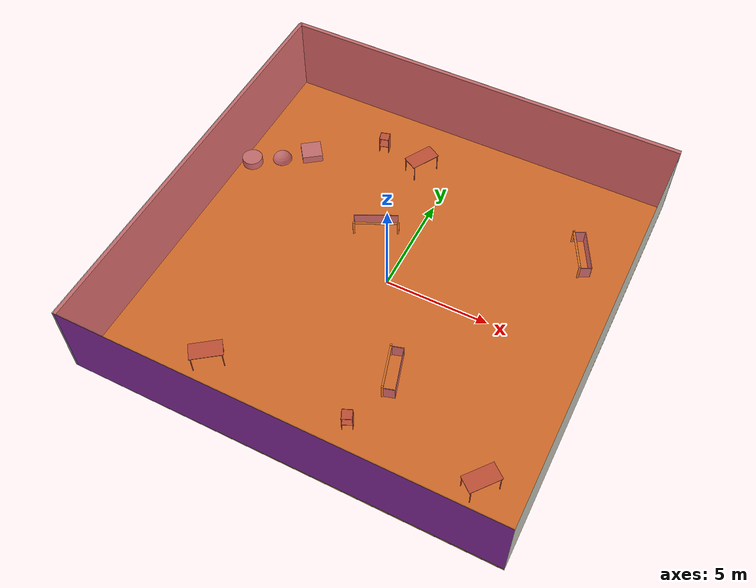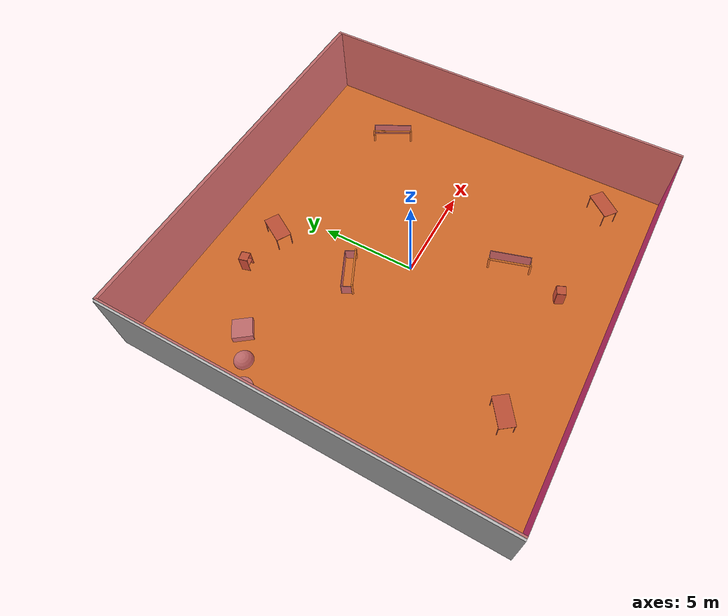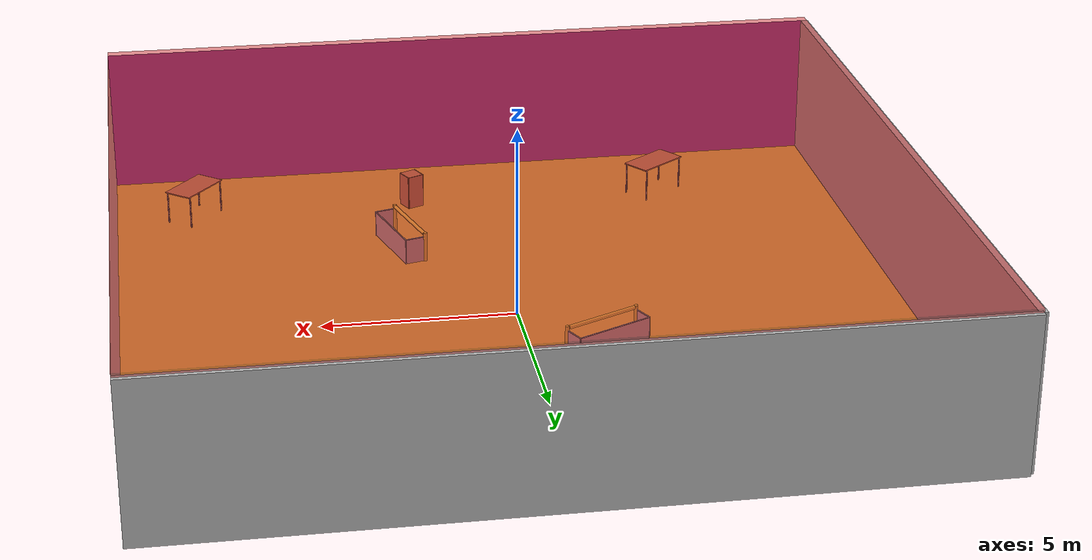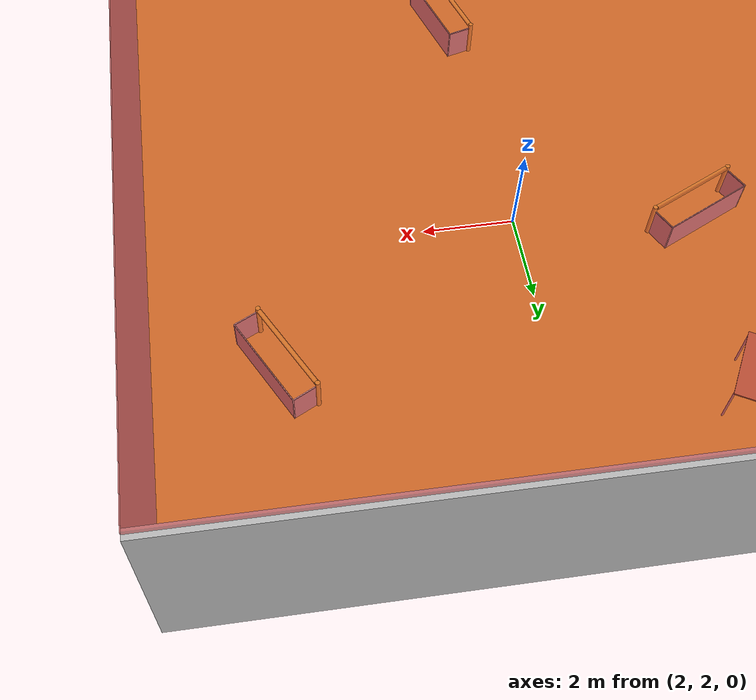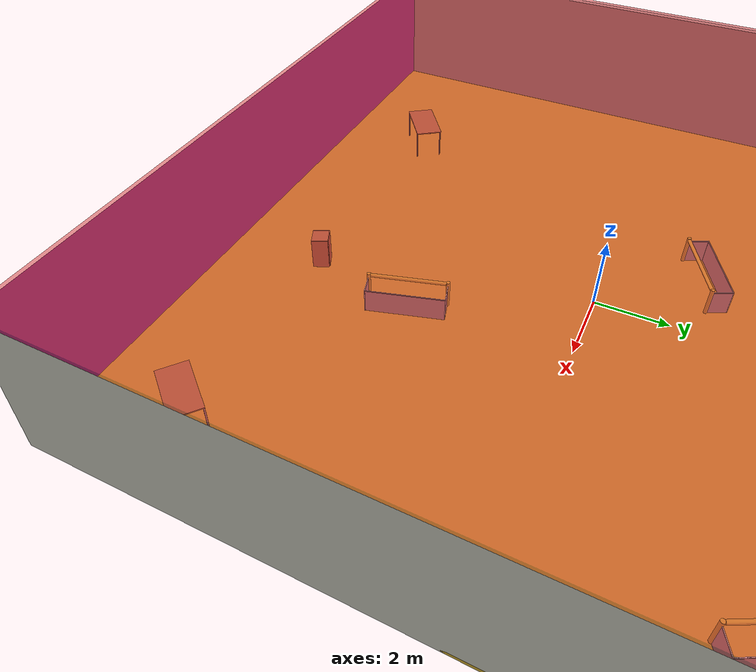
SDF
<sdf version="1.4">
 <world name="default">
  <physics type="ode">
   <max_step_size>0.001</max_step_size>
   <real_time_factor>1</real_time_factor>
   <real_time_update_rate>1000</real_time_update_rate>
   <gravity>0 0 -9.8</gravity>
  </physics>
  <scene><ambient>0.4 0.4 0.4 1</ambient><background>0.7 0.7 0.7 1</background><shadows>1</shadows></scene>
  <model name="Surrounding">
   <static>1</static>
   <link name="Ceiling">
    <collision name="Ceiling_Collision"><geometry><box><size>20 20 0.1</size></box></geometry></collision>
    <visual name="Ceiling_Visual">
     <geometry><box><size>20 20 0.1</size></box></geometry>
     <material>
      <script><uri>file://media/materials/scripts/gazebo.material</uri><name>Gazebo/RedTransparent</name></script>
     </material>
    </visual>
    <pose>0 0 4.05 0 0 0</pose>
   </link>
   <link name="Wall_South">
    <collision name="Wall_South_Collision">
     <geometry><box><size>20 0 4</size></box></geometry>
     <pose>0 0 2 0 -0 0</pose>
    </collision>
    <visual name="Wall_South_Visual">
     <pose>0 0 2 0 -0 0</pose>
     <geometry><box><size>20 0 4</size></box></geometry>
     <material>
      <script><uri>file://media/materials/scripts/gazebo.material</uri><name>Gazebo/Purple</name></script>
     </material>
    </visual>
    <velocity_decay><linear>0</linear><angular>0</angular></velocity_decay>
    <pose>0 -10 0 0 -0 0</pose>
   </link>
   <link name="Wall_East">
    <collision name="Wall_21_Collision">
     <geometry><box><size>20 0 4</size></box></geometry>
     <pose>0 0 2 0 -0 0</pose>
    </collision>
    <visual name="Wall_21_Visual">
     <pose>0 0 2 0 -0 0</pose>
     <geometry><box><size>20 0 4</size></box></geometry>
     <material>
      <script><uri>file://media/materials/scripts/gazebo.material</uri><name>Gazebo/PaintedWall</name></script>
     </material>
    </visual>
    <velocity_decay><linear>0</linear><angular>0</angular></velocity_decay>
    <pose>10 0 0 0 -0 1.5708</pose>
   </link>
   <link name="Wall_North">
    <collision name="Wall_22_Collision">
     <geometry><box><size>20 0.2 4</size></box></geometry>
     <pose>0 0 2 0 -0 0</pose>
    </collision>
    <visual name="Wall_22_Visual">
     <pose>0 0 2 0 -0 0</pose>
     <geometry><box><size>20 0.2 4</size></box></geometry>
     <material>
      <script><uri>file://media/materials/scripts/gazebo.material</uri><name>Gazebo/PioneerBody</name></script>
     </material>
    </visual>
    <velocity_decay><linear>0</linear><angular>0</angular></velocity_decay>
    <pose>0 10 0 0 -0 0</pose>
   </link>
   <link name="Wall_West">
    <collision name="Wall_23_Collision">
     <geometry><box><size>20 0.2 4</size></box></geometry>
     <pose>0 0 2 0 -0 0</pose>
    </collision>
    <visual name="Wall_23_Visual">
     <pose>0 0 2 0 -0 0</pose>
     <geometry><box><size>20 0.2 4</size></box></geometry>
     <material>
      <script><uri>file://media/materials/scripts/gazebo.material</uri><name>Gazebo/JointAnchor</name></script>
     </material>
    </visual>
    <velocity_decay><linear>0</linear><angular>0</angular></velocity_decay>
    <pose>-10 0 0 0 0 -1.5708</pose>
   </link>
   <link name="Ground_link">
    <collision name="collision">
     <pose>0 0 .05 0 -0 0</pose>
     <geometry><box><size>20 20 0.1</size></box></geometry>
    </collision>
    <visual name="visual">
     <pose>0 0 .05 0 -0 0</pose>
     <geometry><box><size>20 20 0.1</size></box></geometry>
     <material>
      <script><uri>file://media/materials/scripts/gazebo.material</uri><name>Gazebo/Gold</name></script>
     </material>
    </visual>
   </link>
   <static>1</static>
  </model>
  <spherical_coordinates>
   <surface_model>EARTH_WGS84</surface_model>
   <latitude_deg>0</latitude_deg>
   <longitude_deg>0</longitude_deg>
   <elevation>0</elevation>
   <heading_deg>0</heading_deg>
  </spherical_coordinates>
  <light name="lightball_0" type="diffuse">
   <diffuse>0.8 0.8 0.8 1</diffuse>
   <specular>0.2 0.2 0.2 1</specular>
   <attenuation>
    <range>100</range>
    <constant>0.7</constant>
    <linear>0.01</linear>
    <quadratic>0.001</quadratic>
   </attenuation>
   <direction>-0.5 0.1 -0.9</direction>
   <pose>-5.97605756965 -8.44975555249 0.507070770396 0 0 0</pose>
  </light>
  <light name="lightball_1" type="diffuse">
   <diffuse>0.8 0.8 0.8 1</diffuse>
   <specular>0.2 0.2 0.2 1</specular>
   <attenuation>
    <range>100</range>
    <constant>0.7</constant>
    <linear>0.01</linear>
    <quadratic>0.001</quadratic>
   </attenuation>
   <direction>-0.5 0.1 -0.9</direction>
   <pose>-5.52373270739 2.93483779902 2.11475744637 0 0 0</pose>
  </light>
  <light name="lightball_2" type="diffuse">
   <diffuse>0.8 0.8 0.8 1</diffuse>
   <specular>0.2 0.2 0.2 1</specular>
   <attenuation>
    <range>100</range>
    <constant>0.7</constant>
    <linear>0.01</linear>
    <quadratic>0.001</quadratic>
   </attenuation>
   <direction>-0.5 0.1 -0.9</direction>
   <pose>7.45970586392 -1.64878259535 1.55407820896 0 0 0</pose>
  </light>
  <light name="lightball_3" type="diffuse">
   <diffuse>0.8 0.8 0.8 1</diffuse>
   <specular>0.2 0.2 0.2 1</specular>
   <attenuation>
    <range>100</range>
    <constant>0.7</constant>
    <linear>0.01</linear>
    <quadratic>0.001</quadratic>
   </attenuation>
   <direction>-0.5 0.1 -0.9</direction>
   <pose>5.94931099084 0.902099590265 1.47872866509 0 0 0</pose>
  </light>
  <light name="lightball_4" type="diffuse">
   <diffuse>0.8 0.8 0.8 1</diffuse>
   <specular>0.2 0.2 0.2 1</specular>
   <attenuation>
    <range>100</range>
    <constant>0.7</constant>
    <linear>0.01</linear>
    <quadratic>0.001</quadratic>
   </attenuation>
   <direction>-0.5 0.1 -0.9</direction>
   <pose>-0.759400265317 0.446786999537 3.3058441428 0 0 0</pose>
  </light>
  <light name="lightball_5" type="diffuse">
   <diffuse>0.8 0.8 0.8 1</diffuse>
   <specular>0.2 0.2 0.2 1</specular>
   <attenuation>
    <range>100</range>
    <constant>0.7</constant>
    <linear>0.01</linear>
    <quadratic>0.001</quadratic>
   </attenuation>
   <direction>-0.5 0.1 -0.9</direction>
   <pose>-2.61062541667 -0.835663652564 3.63361535986 0 0 0</pose>
  </light>
  <light name="lightball_6" type="diffuse">
   <diffuse>0.8 0.8 0.8 1</diffuse>
   <specular>0.2 0.2 0.2 1</specular>
   <attenuation>
    <range>100</range>
    <constant>0.7</constant>
    <linear>0.01</linear>
    <quadratic>0.001</quadratic>
   </attenuation>
   <direction>-0.5 0.1 -0.9</direction>
   <pose>0.994586825667 -5.97548813212 2.96586809643 0 0 0</pose>
  </light>
  <light name="lightball_7" type="diffuse">
   <diffuse>0.8 0.8 0.8 1</diffuse>
   <specular>0.2 0.2 0.2 1</specular>
   <attenuation>
    <range>100</range>
    <constant>0.7</constant>
    <linear>0.01</linear>
    <quadratic>0.001</quadratic>
   </attenuation>
   <direction>-0.5 0.1 -0.9</direction>
   <pose>-9.23376679102 -6.3111608247 1.53775038807 0 0 0</pose>
  </light>
  <light name="lightball_8" type="diffuse">
   <diffuse>0.8 0.8 0.8 1</diffuse>
   <specular>0.2 0.2 0.2 1</specular>
   <attenuation>
    <range>100</range>
    <constant>0.7</constant>
    <linear>0.01</linear>
    <quadratic>0.001</quadratic>
   </attenuation>
   <direction>-0.5 0.1 -0.9</direction>
   <pose>7.99028900854 1.73767153858 1.305398189 0 0 0</pose>
  </light>
  <light name="lightball_9" type="diffuse">
   <diffuse>0.8 0.8 0.8 1</diffuse>
   <specular>0.2 0.2 0.2 1</specular>
   <attenuation>
    <range>100</range>
    <constant>0.7</constant>
    <linear>0.01</linear>
    <quadratic>0.001</quadratic>
   </attenuation>
   <direction>-0.5 0.1 -0.9</direction>
   <pose>-9.11454189395 -8.74649476403 2.07890895124 0 0 0</pose>
  </light>
  <light name="lightball_10" type="diffuse">
   <diffuse>0.8 0.8 0.8 1</diffuse>
   <specular>0.2 0.2 0.2 1</specular>
   <attenuation>
    <range>100</range>
    <constant>0.7</constant>
    <linear>0.01</linear>
    <quadratic>0.001</quadratic>
   </attenuation>
   <direction>-0.5 0.1 -0.9</direction>
   <pose>8.1057550833 5.93353307138 3.06839519458 0 0 0</pose>
  </light>
  <light name="lightball_11" type="diffuse">
   <diffuse>0.8 0.8 0.8 1</diffuse>
   <specular>0.2 0.2 0.2 1</specular>
   <attenuation>
    <range>100</range>
    <constant>0.7</constant>
    <linear>0.01</linear>
    <quadratic>0.001</quadratic>
   </attenuation>
   <direction>-0.5 0.1 -0.9</direction>
   <pose>-8.42862983249 -5.75071269933 0.674179401593 0 0 0</pose>
  </light>
  <include>
   <uri>model://textured_shapes</uri>
   <pose>-8.19743227075 4.45156116359 0 0 0 2.2056501999</pose>
  </include>
  <include><uri>model://table</uri><pose>-5.02731788214 -7.30610852514 0 0 0 0.634671673269</pose></include>
  <include><uri>model://cabinet</uri><pose>-3.85665609629 7.37917232415 0 0 0 1.82568281001</pose></include>
  <include>
   <uri>model://robocup_3Dsim_goal</uri>
   <pose>-1.74927383271 2.27069495949 0 0 0 2.01953968091</pose>
  </include>
  <include><uri>model://table</uri><pose>-1.58964451865 6.94910379123 0 0 0 1.04985893293</pose></include>
  <include><uri>model://cabinet</uri><pose>1.84546150169 -7.31893934084 0 0 0 1.99341802786</pose></include>
  <include>
   <uri>model://robocup_3Dsim_goal</uri>
   <pose>2.22011011226 -4.45606969182 0 0 0 0.283631410936</pose>
  </include>
  <include><uri>model://table</uri><pose>7.86539967737 -7.374272387 0 0 0 0.890348660492</pose></include>
  <include>
   <uri>model://robocup_3Dsim_goal</uri>
   <pose>7.26480084343 5.09080681721 0 0 0 0.478410641422</pose>
  </include>
 </world>
</sdf>

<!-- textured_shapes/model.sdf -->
<sdf version="1.6">
  <model name="textured_shapes">
    <pose>0 0 0.5 0 0 0</pose>
    <link name="box">
      <pose>0 -1.5 0 0 0 0</pose>
      <collision name="collision">
        <geometry>
          <box>
            <size>1 1 1</size>
          </box>
        </geometry>
      </collision>
      <visual name="visual">
        <geometry>
          <box>
            <size>1 1 1</size>
          </box>
        </geometry>
        <material>
          <script>
            <uri>model://../model_source/models/textured_shapes/materials/scripts</uri>
            <uri>model://../model_source/models/textured_shapes/materials/textures</uri>
            <name>TexturedShape/Squares</name>
          </script>
        </material>
      </visual>
    </link>
    <link name="sphere">
      <collision name="collision">
        <geometry>
          <sphere>
            <radius>0.5</radius>
          </sphere>
        </geometry>
      </collision>
      <visual name="visual">
        <geometry>
          <sphere>
            <radius>0.5</radius>
          </sphere>
        </geometry>
        <material>
          <script>
            <uri>model://../model_source/models/textured_shapes/materials/scripts</uri>
            <uri>model://../model_source/models/textured_shapes/materials/textures</uri>
            <name>TexturedShape/Squares</name>
          </script>
        </material>
      </visual>
    </link>
    <link name="cylinder">
      <pose>0 1.5 0 0 0 0</pose>
      <collision name="collision">
        <geometry>
          <cylinder>
            <radius>0.5</radius>
            <length>1</length>
          </cylinder>
        </geometry>
      </collision>
      <visual name="visual">
        <geometry>
          <cylinder>
            <radius>0.5</radius>
            <length>1</length>
          </cylinder>
        </geometry>
        <material>
          <script>
            <uri>model://../model_source/models/textured_shapes/materials/scripts</uri>
            <uri>model://../model_source/models/textured_shapes/materials/textures</uri>
            <name>TexturedShape/Squares</name>
          </script>
        </material>
      </visual>
    </link>
  </model>
</sdf>

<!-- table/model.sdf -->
<sdf version="1.5">
  <model name="table">
    <static>true</static>
    <link name="link">
      <collision name="surface">
        <pose>0 0 1.0 0 0 0</pose>
        <geometry>
          <box>
            <size>1.5 0.8 0.03</size>
          </box>
        </geometry>
        <surface>
          <friction>
            <ode>
              <mu>0.6</mu>
              <mu2>0.6</mu2>
            </ode>
          </friction>
        </surface>
      </collision>
      <visual name="visual1">
        <pose>0 0 1.0 0 0 0</pose>
        <geometry>
          <box>
            <size>1.5 0.8 0.03</size>
          </box>
        </geometry>
        <material>
          <script>
            <uri>model://media/materials/scripts/gazebo.material</uri>
            <name>Gazebo/Wood</name>
          </script>
        </material>
      </visual>
      <collision name="front_left_leg">
        <pose>0.68 0.38 0.5 0 0 0</pose>
        <geometry>
          <cylinder>
            <radius>0.02</radius>
            <length>1.0</length>
          </cylinder>
        </geometry>
      </collision>
      <visual name="front_left_leg">
        <pose>0.68 0.38 0.5 0 0 0</pose>
        <geometry>
          <cylinder>
            <radius>0.02</radius>
            <length>1.0</length>
          </cylinder>
        </geometry>
        <material>
          <script>
            <uri>model://media/materials/scripts/gazebo.material</uri>
            <name>Gazebo/Grey</name>
          </script>
        </material>
      </visual>
      <collision name="front_right_leg">
        <pose>0.68 -0.38 0.5 0 0 0</pose>
        <geometry>
          <cylinder>
            <radius>0.02</radius>
            <length>1.0</length>
          </cylinder>
        </geometry>
      </collision>
      <visual name="front_right_leg">
        <pose>0.68 -0.38 0.5 0 0 0</pose>
        <geometry>
          <cylinder>
            <radius>0.02</radius>
            <length>1.0</length>
          </cylinder>
        </geometry>
        <material>
          <script>
            <uri>model://media/materials/scripts/gazebo.material</uri>
            <name>Gazebo/Grey</name>
          </script>
        </material>
      </visual>
      <collision name="back_right_leg">
        <pose>-0.68 -0.38 0.5 0 0 0</pose>
        <geometry>
          <cylinder>
            <radius>0.02</radius>
            <length>1.0</length>
          </cylinder>
        </geometry>
      </collision>
      <visual name="back_right_leg">
        <pose>-0.68 -0.38 0.5 0 0 0</pose>
        <geometry>
          <cylinder>
            <radius>0.02</radius>
            <length>1.0</length>
          </cylinder>
        </geometry>
        <material>
          <script>
            <uri>model://media/materials/scripts/gazebo.material</uri>
            <name>Gazebo/Grey</name>
          </script>
        </material>
      </visual>
      <collision name="back_left_leg">
        <pose>-0.68 0.38 0.5 0 0 0</pose>
        <geometry>
          <cylinder>
            <radius>0.02</radius>
            <length>1.0</length>
          </cylinder>
        </geometry>
      </collision>
      <visual name="back_left_leg">
        <pose>-0.68 0.38 0.5 0 0 0</pose>
        <geometry>
          <cylinder>
            <radius>0.02</radius>
            <length>1.0</length>
          </cylinder>
        </geometry>
        <material>
          <script>
            <uri>model://media/materials/scripts/gazebo.material</uri>
            <name>Gazebo/Grey</name>
          </script>
        </material>
      </visual>
    </link>
  </model>
</sdf>

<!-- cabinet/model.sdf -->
<sdf version="1.5">
  <model name="cabinet">
    <static>true</static>
    <link name="cabinet_bottom_plate">
      <inertial>
        <pose>0 0 -1 0 0 0</pose>
        <inertia>
          <ixx>2.050000</ixx>
          <ixy>0</ixy>
          <ixz>0</ixz>
          <iyy>2.050000</iyy>
          <iyz>0</iyz>
          <izz>2.050000</izz>
        </inertia>
        <mass>25.000000</mass>
      </inertial>
      <collision name="cabinet_bottom_plate_geom">
        <pose>0 0 0.010000 0 0 0</pose>
        <geometry>
          <box>
            <size>0.450000 0.450000 0.020000</size>
          </box>
        </geometry>
      </collision>
      <visual name="cabinet_bottom_plate_geom_visual">
        <pose>0 0 0.010000 0 0 0</pose>
        <geometry>
          <box>
            <size>0.450000 0.450000 0.020000</size>
          </box>
        </geometry>
        <material>
          <script>
            <uri>model://media/materials/scripts/gazebo.material</uri>
            <name>Gazebo/Wood</name>
          </script>
        </material>
      </visual>
      <collision name="cabinet_bottom_plate_geom_cabinet_back_plate">
        <pose>0.235000 0 0.510000 0 0 0</pose>
        <geometry>
          <box>
            <size>0.020000 0.450000 1.020000</size>
          </box>
        </geometry>
      </collision>
      <visual name="cabinet_bottom_plate_geom_cabinet_back_plate_visual">
        <pose>0.235000 0 0.510000 0 0 0</pose>
        <geometry>
          <box>
            <size>0.020000 0.450000 1.020000</size>
          </box>
        </geometry>
        <material>
          <script>
            <uri>model://media/materials/scripts/gazebo.material</uri>
            <name>Gazebo/Wood</name>
          </script>
        </material>
      </visual>
      <collision name="cabinet_bottom_plate_geom_cabinet_left_plate">
        <pose>0 0.235000 0.510000 0 0 0</pose>
        <geometry>
          <box>
            <size>0.450000 0.020000 1.020000</size>
          </box>
        </geometry>
      </collision>
      <visual name="cabinet_bottom_plate_geom_cabinet_left_plate_visual">
        <pose>0 0.235000 0.510000 0 0 0</pose>
        <geometry>
          <box>
            <size>0.450000 0.020000 1.020000</size>
          </box>
        </geometry>
        <material>
          <script>
            <uri>model://media/materials/scripts/gazebo.material</uri>
            <name>Gazebo/Wood</name>
          </script>
        </material>
      </visual>
      <collision name="cabinet_bottom_plate_geom_cabinet_middle_plate">
        <pose>0 0 0.510000 0 0 0</pose>
        <geometry>
          <box>
            <size>0.450000 0.450000 0.020000</size>
          </box>
        </geometry>
      </collision>
      <visual name="cabinet_bottom_plate_geom_cabinet_middle_plate_visual">
        <pose>0 0 0.510000 0 0 0</pose>
        <geometry>
          <box>
            <size>0.450000 0.450000 0.020000</size>
          </box>
        </geometry>
        <material>
          <script>
            <uri>model://media/materials/scripts/gazebo.material</uri>
            <name>Gazebo/Wood</name>
          </script>
        </material>
      </visual>
      <collision name="cabinet_bottom_plate_geom_cabinet_right_plate">
        <pose>0 -0.235000 0.510000 0 0 0</pose>
        <geometry>
          <box>
            <size>0.450000 0.020000 1.020000</size>
          </box>
        </geometry>
      </collision>
      <visual name="cabinet_bottom_plate_geom_cabinet_right_plate_visual">
        <pose>0 -0.235000 0.510000 0 0 0</pose>
        <geometry>
          <box>
            <size>0.450000 0.020000 1.020000</size>
          </box>
        </geometry>
        <material>
          <script>
            <uri>model://media/materials/scripts/gazebo.material</uri>
            <name>Gazebo/Wood</name>
          </script>
        </material>
      </visual>
      <collision name="cabinet_bottom_plate_geom_cabinet_top_plate">
        <pose>0 0 1.010000 0 0 0</pose>
        <geometry>
          <box>
            <size>0.450000 0.450000 0.020000</size>
          </box>
        </geometry>
      </collision>
      <visual name="cabinet_bottom_plate_geom_cabinet_top_plate_visual">
        <pose>0 0 1.010000 0 0 0</pose>
        <geometry>
          <box>
            <size>0.450000 0.450000 0.020000</size>
          </box>
        </geometry>
        <material>
          <script>
            <uri>model://media/materials/scripts/gazebo.material</uri>
            <name>Gazebo/Wood</name>
          </script>
        </material>
      </visual>
    </link>
  </model>
</sdf>

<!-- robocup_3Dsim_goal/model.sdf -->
<sdf version="1.5">
  <model name="robocup_3d_goal">
    <static>true</static>
    <link name="left_post">
      <pose>0 1.05 0.45 0 0 0</pose>
      <collision name="collision">
        <geometry>
          <cylinder>
            <radius>0.05</radius>
            <length>0.9</length>
          </cylinder>
        </geometry>
      </collision>
      <visual name="visual">
        <geometry>
          <cylinder>
            <radius>0.05</radius>
            <length>0.9</length>
          </cylinder>
        </geometry>
        <material>
          <script>
            <uri>file://media/materials/scripts/gazebo.material</uri>
            <name>Gazebo/ZincYellow</name>
          </script>
        </material>
      </visual>
    </link>
    <link name="left_support_horiz_lower">
      <pose>0.30 1.05 0.01 0 0 0</pose>
      <collision name="collision">
        <geometry>
          <box>
            <size>0.50 0.02 0.02</size>
          </box>
        </geometry>
      </collision>
      <visual name="visual">
        <geometry>
          <box>
            <size>0.50 0.02 0.02</size>
          </box>
        </geometry>
        <material>
          <script>
            <uri>file://media/materials/scripts/gazebo.material</uri>
            <name>Gazebo/White</name>
          </script>
        </material>
      </visual>
    </link>
    <link name="left_support_horiz_upper">
      <pose>0.30 1.05 0.79 0 0 0</pose>
      <collision name="collision">
        <geometry>
          <box>
            <size>0.50 0.02 0.02</size>
          </box>
        </geometry>
      </collision>
      <visual name="visual">
        <geometry>
          <box>
            <size>0.50 0.02 0.02</size>
          </box>
        </geometry>
        <material>
          <script>
            <uri>file://media/materials/scripts/gazebo.material</uri>
            <name>Gazebo/White</name>
          </script>
        </material>
      </visual>
    </link>
    <link name="left_support_vertical">
      <pose>0.56 1.05 0.4 0 1.5708 0</pose>
      <collision name="collision">
        <geometry>
          <box>
            <size>0.80 0.02 0.02</size>
          </box>
        </geometry>
      </collision>
      <visual name="visual">
        <geometry>
          <box>
            <size>0.80 0.02 0.02</size>
          </box>
        </geometry>
        <material>
          <script>
            <uri>file://media/materials/scripts/gazebo.material</uri>
            <name>Gazebo/White</name>
          </script>
        </material>
      </visual>
    </link>
    <link name="right_support_horiz_lower">
      <pose>0.30 -1.05 0.01 0 0 0</pose>
      <collision name="collision">
        <geometry>
          <box>
            <size>0.50 0.02 0.02</size>
          </box>
        </geometry>
      </collision>
      <visual name="visual">
        <geometry>
          <box>
            <size>0.50 0.02 0.02</size>
          </box>
        </geometry>
        <material>
          <script>
            <uri>file://media/materials/scripts/gazebo.material</uri>
            <name>Gazebo/White</name>
          </script>
        </material>
      </visual>
    </link>
    <link name="right_support_horiz_upper">
      <pose>0.30 -1.05 0.79 0 0 0</pose>
      <collision name="collision">
        <geometry>
          <box>
            <size>0.50 0.02 0.02</size>
          </box>
        </geometry>
      </collision>
      <visual name="visual">
        <geometry>
          <box>
            <size>0.50 0.02 0.02</size>
          </box>
        </geometry>
        <material>
          <script>
            <uri>file://media/materials/scripts/gazebo.material</uri>
            <name>Gazebo/White</name>
          </script>
        </material>
      </visual>
    </link>
    <link name="right_support_vertical">
      <pose>0.56 -1.05 0.4 0 1.5708 0</pose>
      <collision name="collision">
        <geometry>
          <box>
            <size>0.80 0.02 0.02</size>
          </box>
        </geometry>
      </collision>
      <visual name="visual">
        <geometry>
          <box>
            <size>0.80 0.02 0.02</size>
          </box>
        </geometry>
        <material>
          <script>
            <uri>file://media/materials/scripts/gazebo.material</uri>
            <name>Gazebo/White</name>
          </script>
        </material>
      </visual>
    </link>
    <link name="center_support_horiz_lower">
      <pose>0.56 0 0.01 0 1.5708 0</pose>
      <collision name="collision">
        <geometry>
          <box>
            <size>0.02 2.08 0.02</size>
          </box>
        </geometry>
      </collision>
      <visual name="visual">
        <geometry>
          <box>
            <size>0.02 2.08 0.02</size>
          </box>
        </geometry>
        <material>
          <script>
            <uri>file://media/materials/scripts/gazebo.material</uri>
            <name>Gazebo/White</name>
          </script>
        </material>
      </visual>
    </link>
    <link name="center_support_horiz_upper">
      <pose>0.56 0 0.79 0 1.5708 0</pose>
      <collision name="collision">
        <geometry>
          <box>
            <size>0.02 2.08 0.02</size>
          </box>
        </geometry>
      </collision>
      <visual name="visual">
        <geometry>
          <box>
            <size>0.02 2.08 0.02</size>
          </box>
        </geometry>
        <material>
          <script>
            <uri>file://media/materials/scripts/gazebo.material</uri>
            <name>Gazebo/White</name>
          </script>
        </material>
      </visual>
    </link>
    <link name="right_post">
      <pose>0 -1.05 0.45 0 0 0</pose>
      <collision name="collision">
        <geometry>
          <cylinder>
            <radius>0.05</radius>
            <length>0.9</length>
          </cylinder>
        </geometry>
      </collision>
      <visual name="visual">
        <geometry>
          <cylinder>
            <radius>0.05</radius>
            <length>0.9</length>
          </cylinder>
        </geometry>
        <material>
          <script>
            <uri>file://media/materials/scripts/gazebo.material</uri>
            <name>Gazebo/ZincYellow</name>
          </script>
        </material>
      </visual>
    </link>
    <link name="crossbar">
      <pose>0 0 0.85 1.57 1.57 0</pose>
      <collision name="collision">
        <geometry>
          <cylinder>
            <radius>0.05</radius>
            <length>2.0</length>
          </cylinder>
        </geometry>
      </collision>
      <visual name="visual">
        <geometry>
          <cylinder>
            <radius>0.05</radius>
            <length>2.0</length>
          </cylinder>
        </geometry>
        <material>
          <script>
            <uri>file://media/materials/scripts/gazebo.material</uri>
            <name>Gazebo/ZincYellow</name>
          </script>
        </material>
      </visual>
    </link>
    <link name="center_net">
      <pose>0.56 0 0.40 0 0 0</pose>
      <collision name="collision">
        <geometry>
          <box>
            <size>0.01 2.1 0.80</size>
          </box>
        </geometry>
      </collision>
      <visual name="visual">
        <geometry>
          <box>
            <size>0.01 2.1 0.80</size>
          </box>
        </geometry>
        <material>
          <script>
            <uri>model://../model_source/models/robocup09_spl_field/materials/scripts/</uri>
            <uri>model://../model_source/models/robocup09_spl_field/materials/textures/</uri>
            <name>RoboCup/Net</name>
          </script>
        </material>
      </visual>
    </link>
    <link name="left_net">
      <pose>0.30 1.05 0.40 0 0 0</pose>
      <collision name="collision">
        <geometry>
          <box>
            <size>0.50 0.01 0.76</size>
          </box>
        </geometry>
      </collision>
      <visual name="visual">
        <geometry>
          <box>
            <size>0.50 0.01 0.76</size>
          </box>
        </geometry>
        <material>
          <script>
            <uri>model://../model_source/models/robocup09_spl_field/materials/scripts/</uri>
            <uri>model://../model_source/models/robocup09_spl_field/materials/textures/</uri>
            <name>RoboCup/Net</name>
          </script>
        </material>
      </visual>
    </link>
    <link name="right_net">
      <pose>0.30 -1.05 0.40 0 0 0</pose>
      <collision name="collision">
        <geometry>
          <box>
            <size>0.50 0.01 0.76</size>
          </box>
        </geometry>
      </collision>
      <visual name="visual">
        <geometry>
          <box>
            <size>0.50 0.01 0.76</size>
          </box>
        </geometry>
        <material>
          <script>
            <uri>model://../model_source/models/robocup09_spl_field/materials/scripts/</uri>
            <uri>model://../model_source/models/robocup09_spl_field/materials/textures/</uri>
            <name>RoboCup/Net</name>
          </script>
        </material>
      </visual>
    </link>
  </model>
</sdf>
